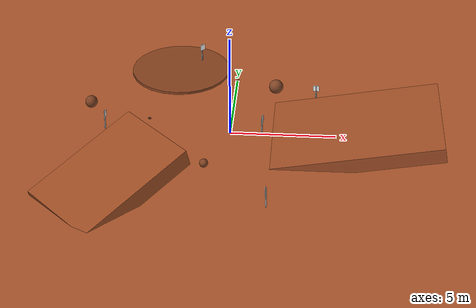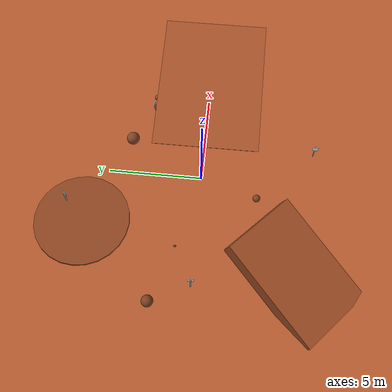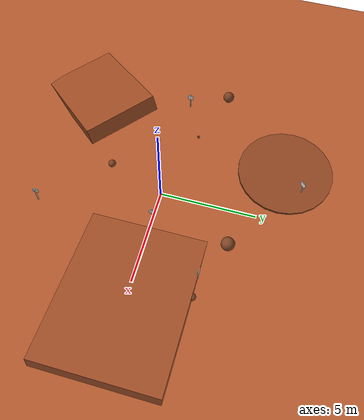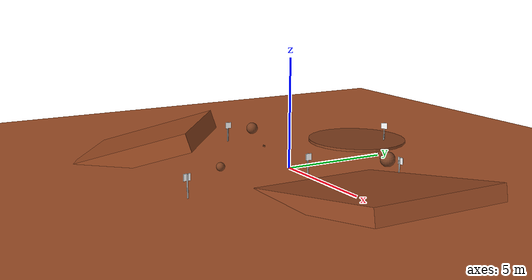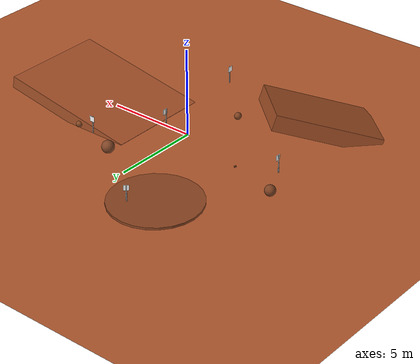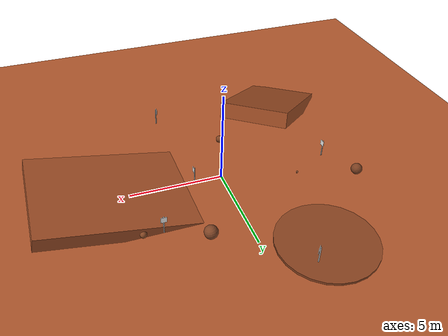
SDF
<?xml version="1.0" ?>
<sdf version="1.6">
  <world name="mars_yard">

    <!-- ===================== LIGHTING ===================== -->
    <!-- Mars-like directional light, low angle sun -->
    <light name="sun" type="directional">
      <cast_shadows>true</cast_shadows>
      <pose>0 0 50 0 0.3 0.5</pose>
      <diffuse>0.9 0.7 0.5 1</diffuse>
      <specular>0.3 0.2 0.1 1</specular>
      <direction>-0.5 0.3 -0.8</direction>
    </light>

    <!-- Ambient fill to avoid pitch-black shadows -->
    <scene>
      <ambient>0.3 0.2 0.15 1</ambient>
      <background>0.55 0.35 0.2 1</background>
      <sky>
        <clouds>
          <speed>0</speed>
        </clouds>
      </sky>
    </scene>

    <!-- ===================== PHYSICS ===================== -->
    <physics type="ode">
      <real_time_update_rate>1000</real_time_update_rate>
      <max_step_size>0.001</max_step_size>
      <real_time_factor>1</real_time_factor>
      <ode>
        <solver>
          <type>quick</type>
          <iters>150</iters>
          <sor>1.4</sor>
        </solver>
        <constraints>
          <cfm>0.00001</cfm>
          <erp>0.2</erp>
          <contact_max_correcting_vel>100</contact_max_correcting_vel>
          <contact_surface_layer>0.001</contact_surface_layer>
        </constraints>
      </ode>
    </physics>

    <!-- ===================== BASE GROUND PLANE (reddish Mars soil) ===================== -->
    <model name="ground_plane">
      <static>true</static>
      <link name="link">
        <collision name="collision">
          <geometry>
            <plane>
              <normal>0 0 1</normal>
              <size>40 40</size>
            </plane>
          </geometry>
          <surface>
            <friction>
              <ode>
                <!-- Sandy, loose soil = lower friction than concrete -->
                <mu>0.6</mu>
                <mu2>0.6</mu2>
              </ode>
            </friction>
            <contact>
              <ode>
                <soft_cfm>0.001</soft_cfm>
                <soft_erp>0.15</soft_erp>
              </ode>
            </contact>
          </surface>
        </collision>
        <visual name="visual">
          <cast_shadows>false</cast_shadows>
          <geometry>
            <plane>
              <normal>0 0 1</normal>
              <size>40 40</size>
            </plane>
          </geometry>
          <material>
            <ambient>0.6 0.3 0.15 1</ambient>
            <diffuse>0.7 0.35 0.18 1</diffuse>
            <specular>0.1 0.05 0.02 1</specular>
          </material>
        </visual>
      </link>
    </model>

    <!-- ===================== SLOPE 1: Gentle ramp (~10 deg) North side ===================== -->
    <model name="slope_north">
      <static>true</static>
      <pose>6 0 0.35 0 -0.175 0</pose>
      <link name="link">
        <collision name="collision">
          <geometry>
            <box><size>8 6 0.7</size></box>
          </geometry>
          <surface>
            <friction><ode><mu>0.55</mu><mu2>0.55</mu2></ode></friction>
          </surface>
        </collision>
        <visual name="visual">
          <geometry>
            <box><size>8 6 0.7</size></box>
          </geometry>
          <material>
            <ambient>0.55 0.28 0.12 1</ambient>
            <diffuse>0.65 0.32 0.16 1</diffuse>
          </material>
        </visual>
      </link>
    </model>

    <!-- ===================== SLOPE 2: Steeper ramp (~18 deg) South-West ===================== -->
    <model name="slope_southwest">
      <static>true</static>
      <pose>-5 -5 0.55 0.08 -0.31 0.8</pose>
      <link name="link">
        <collision name="collision">
          <geometry>
            <box><size>6 4 0.9</size></box>
          </geometry>
          <surface>
            <friction><ode><mu>0.5</mu><mu2>0.5</mu2></ode></friction>
          </surface>
        </collision>
        <visual name="visual">
          <geometry>
            <box><size>6 4 0.9</size></box>
          </geometry>
          <material>
            <ambient>0.52 0.26 0.11 1</ambient>
            <diffuse>0.62 0.30 0.14 1</diffuse>
          </material>
        </visual>
      </link>
    </model>

    <!-- ===================== SHALLOW CRATER ===================== -->
    <!-- Simulated as an inverted truncated cone (cylinder depression) -->
    <!-- In Gazebo classic we fake it with a sunken ring of blocks -->
    <model name="crater_rim_1">
      <static>true</static>
      <pose>-3 6 -0.05 0 0 0</pose>
      <link name="link">
        <collision name="col"><geometry><cylinder><radius>2.5</radius><length>0.3</length></cylinder></geometry></collision>
        <visual name="vis">
          <geometry><cylinder><radius>2.5</radius><length>0.3</length></cylinder></geometry>
          <material><ambient>0.45 0.22 0.10 1</ambient><diffuse>0.55 0.27 0.13 1</diffuse></material>
        </visual>
      </link>
    </model>
    <!-- Inner crater floor (sunken) -->
    <model name="crater_floor">
      <static>true</static>
      <pose>-3 6 -0.22 0 0 0</pose>
      <link name="link">
        <collision name="col"><geometry><cylinder><radius>1.6</radius><length>0.1</length></cylinder></geometry></collision>
        <visual name="vis">
          <geometry><cylinder><radius>1.6</radius><length>0.1</length></cylinder></geometry>
          <material><ambient>0.40 0.20 0.09 1</ambient><diffuse>0.50 0.25 0.12 1</diffuse></material>
        </visual>
      </link>
    </model>

    <!-- ===================== BOULDERS ===================== -->
    <!-- Large boulder 1 -->
    <model name="boulder_large_1">
      <static>true</static>
      <pose>2 4 0.35 0.2 0.1 0.5</pose>
      <link name="link">
        <collision name="col"><geometry><sphere><radius>0.35</radius></sphere></geometry></collision>
        <visual name="vis">
          <geometry><sphere><radius>0.35</radius></sphere></geometry>
          <material><ambient>0.4 0.22 0.12 1</ambient><diffuse>0.5 0.27 0.15 1</diffuse><specular>0.15 0.1 0.05 1</specular></material>
        </visual>
      </link>
    </model>

    <!-- Large boulder 2 -->
    <model name="boulder_large_2">
      <static>true</static>
      <pose>-7 2 0.3 0.1 0.3 1.0</pose>
      <link name="link">
        <collision name="col"><geometry><sphere><radius>0.3</radius></sphere></geometry></collision>
        <visual name="vis">
          <geometry><sphere><radius>0.3</radius></sphere></geometry>
          <material><ambient>0.38 0.20 0.11 1</ambient><diffuse>0.48 0.25 0.13 1</diffuse></material>
        </visual>
      </link>
    </model>

    <!-- Medium boulder cluster near slope -->
    <model name="boulder_med_1">
      <static>true</static>
      <pose>5 3 0.18 0.3 0 0.7</pose>
      <link name="link">
        <collision name="col"><geometry><sphere><radius>0.18</radius></sphere></geometry></collision>
        <visual name="vis">
          <geometry><sphere><radius>0.18</radius></sphere></geometry>
          <material><ambient>0.42 0.23 0.12 1</ambient><diffuse>0.52 0.28 0.14 1</diffuse></material>
        </visual>
      </link>
    </model>

    <model name="boulder_med_2">
      <static>true</static>
      <pose>5.6 2.5 0.15 0 0.2 0.3</pose>
      <link name="link">
        <collision name="col"><geometry><sphere><radius>0.15</radius></sphere></geometry></collision>
        <visual name="vis">
          <geometry><sphere><radius>0.15</radius></sphere></geometry>
          <material><ambient>0.42 0.23 0.12 1</ambient><diffuse>0.52 0.28 0.14 1</diffuse></material>
        </visual>
      </link>
    </model>

    <model name="boulder_med_3">
      <static>true</static>
      <pose>-1 -3 0.2 0.1 0.1 1.2</pose>
      <link name="link">
        <collision name="col"><geometry><sphere><radius>0.2</radius></sphere></geometry></collision>
        <visual name="vis">
          <geometry><sphere><radius>0.2</radius></sphere></geometry>
          <material><ambient>0.40 0.21 0.11 1</ambient><diffuse>0.50 0.26 0.13 1</diffuse></material>
        </visual>
      </link>
    </model>

    <!-- Small rocks scattered -->
    <model name="rock_small_1"><static>true</static><pose>3 -2 0.07 0.2 0.1 0</pose>
      <link name="link"><collision name="col"><geometry><box><size>0.14 0.1 0.08</size></box></geometry></collision>
        <visual name="vis"><geometry><box><size>0.14 0.1 0.08</size></box></geometry><material><ambient>0.44 0.24 0.13 1</ambient></material></visual></link></model>

    <model name="rock_small_2"><static>true</static><pose>-4 1 0.06 0 0.3 1</pose>
      <link name="link"><collision name="col"><geometry><box><size>0.12 0.09 0.06</size></box></geometry></collision>
        <visual name="vis"><geometry><box><size>0.12 0.09 0.06</size></box></geometry><material><ambient>0.44 0.24 0.13 1</ambient></material></visual></link></model>

    <model name="rock_small_3"><static>true</static><pose>0 5 0.06 0.1 0 0.6</pose>
      <link name="link"><collision name="col"><geometry><box><size>0.11 0.08 0.06</size></box></geometry></collision>
        <visual name="vis"><geometry><box><size>0.11 0.08 0.06</size></box></geometry><material><ambient>0.44 0.24 0.13 1</ambient></material></visual></link></model>

    <model name="rock_small_4"><static>true</static><pose>7 -1 0.05 0 0.1 0.9</pose>
      <link name="link"><collision name="col"><geometry><box><size>0.1 0.08 0.05</size></box></geometry></collision>
        <visual name="vis"><geometry><box><size>0.1 0.08 0.05</size></box></geometry><material><ambient>0.44 0.24 0.13 1</ambient></material></visual></link></model>

    <model name="rock_small_5"><static>true</static><pose>-6 -4 0.07 0.15 0 0.4</pose>
      <link name="link"><collision name="col"><geometry><box><size>0.13 0.09 0.07</size></box></geometry></collision>
        <visual name="vis"><geometry><box><size>0.13 0.09 0.07</size></box></geometry><material><ambient>0.44 0.24 0.13 1</ambient></material></visual></link></model>

    <!-- ===================== ARUCO MARKER STANDS ===================== -->

    <!-- Marker Stand 0 - near start (0,0) for reference -->
    <model name="aruco_stand_0">
      <static>true</static>
      <pose>1.5 0 0 0 0 0</pose>
      <link name="pole">
        <collision name="col"><geometry><cylinder><radius>0.03</radius><length>1.0</length></cylinder></geometry></collision>
        <visual name="vis">
          <pose>0 0 0.5 0 0 0</pose>
          <geometry><cylinder><radius>0.03</radius><length>1.0</length></cylinder></geometry>
          <material><ambient>0.6 0.6 0.6 1</ambient><diffuse>0.7 0.7 0.7 1</diffuse></material>
        </visual>
      </link>
      <link name="board">
        <!-- Board face at ~0.8m height, facing +X direction -->
        <pose>0.05 0 0.85 0 0 0</pose>
        <collision name="col"><geometry><box><size>0.02 0.3 0.3</size></box></geometry></collision>
        <visual name="vis">
          <geometry><box><size>0.02 0.3 0.3</size></box></geometry>
          <!-- Replace this with your ArUco marker texture -->
          <material>
            <ambient>1 1 1 1</ambient>
            <diffuse>1 1 1 1</diffuse>
            <!-- To use a real texture: -->
          </material>
        </visual>
      </link>
      <joint name="pole_board" type="fixed">
        <parent>pole</parent><child>board</child>
      </joint>
    </model>

    <!-- Marker Stand 1 - checkpoint A area -->
    <model name="aruco_stand_1">
      <static>true</static>
      <pose>4 3 0 0 0 1.57</pose>
      <link name="pole">
        <collision name="col"><geometry><cylinder><radius>0.03</radius><length>1.0</length></cylinder></geometry></collision>
        <visual name="vis">
          <pose>0 0 0.5 0 0 0</pose>
          <geometry><cylinder><radius>0.03</radius><length>1.0</length></cylinder></geometry>
          <material><ambient>0.6 0.6 0.6 1</ambient><diffuse>0.7 0.7 0.7 1</diffuse></material>
        </visual>
      </link>
      <link name="board">
        <pose>0.05 0 0.85 0 0 0</pose>
        <collision name="col"><geometry><box><size>0.02 0.3 0.3</size></box></geometry></collision>
        <visual name="vis">
          <geometry><box><size>0.02 0.3 0.3</size></box></geometry>
          <material><ambient>1 1 1 1</ambient><diffuse>1 1 1 1</diffuse></material>
        </visual>
      </link>
      <joint name="pole_board" type="fixed"><parent>pole</parent><child>board</child></joint>
    </model>

    <!-- Marker Stand 2 - checkpoint B area -->
    <model name="aruco_stand_2">
      <static>true</static>
      <pose>-2 7 0 0 0 -0.785</pose>
      <link name="pole">
        <collision name="col"><geometry><cylinder><radius>0.03</radius><length>1.0</length></cylinder></geometry></collision>
        <visual name="vis">
          <pose>0 0 0.5 0 0 0</pose>
          <geometry><cylinder><radius>0.03</radius><length>1.0</length></cylinder></geometry>
          <material><ambient>0.6 0.6 0.6 1</ambient><diffuse>0.7 0.7 0.7 1</diffuse></material>
        </visual>
      </link>
      <link name="board">
        <pose>0.05 0 0.85 0 0 0</pose>
        <collision name="col"><geometry><box><size>0.02 0.3 0.3</size></box></geometry></collision>
        <visual name="vis">
          <geometry><box><size>0.02 0.3 0.3</size></box></geometry>
          <material><ambient>1 1 1 1</ambient><diffuse>1 1 1 1</diffuse></material>
        </visual>
      </link>
      <joint name="pole_board" type="fixed"><parent>pole</parent><child>board</child></joint>
    </model>

    <!-- Marker Stand 3 - checkpoint C area -->
    <model name="aruco_stand_3">
      <static>true</static>
      <pose>-6 0 0 0 0 0</pose>
      <link name="pole">
        <collision name="col"><geometry><cylinder><radius>0.03</radius><length>1.0</length></cylinder></geometry></collision>
        <visual name="vis">
          <pose>0 0 0.5 0 0 0</pose>
          <geometry><cylinder><radius>0.03</radius><length>1.0</length></cylinder></geometry>
          <material><ambient>0.6 0.6 0.6 1</ambient><diffuse>0.7 0.7 0.7 1</diffuse></material>
        </visual>
      </link>
      <link name="board">
        <pose>0.05 0 0.85 0 0 0</pose>
        <collision name="col"><geometry><box><size>0.02 0.3 0.3</size></box></geometry></collision>
        <visual name="vis">
          <geometry><box><size>0.02 0.3 0.3</size></box></geometry>
          <material><ambient>1 1 1 1</ambient><diffuse>1 1 1 1</diffuse></material>
        </visual>
      </link>
      <joint name="pole_board" type="fixed"><parent>pole</parent><child>board</child></joint>
    </model>

    <!-- Marker Stand 4 - checkpoint D / maintenance panel area -->
    <model name="aruco_stand_4">
      <static>true</static>
      <pose>2 -6 0 0 0 3.14</pose>
      <link name="pole">
        <collision name="col"><geometry><cylinder><radius>0.03</radius><length>1.0</length></cylinder></geometry></collision>
        <visual name="vis">
          <pose>0 0 0.5 0 0 0</pose>
          <geometry><cylinder><radius>0.03</radius><length>1.0</length></cylinder></geometry>
          <material><ambient>0.6 0.6 0.6 1</ambient><diffuse>0.7 0.7 0.7 1</diffuse></material>
        </visual>
      </link>
      <link name="board">
        <pose>0.05 0 0.85 0 0 0</pose>
        <collision name="col"><geometry><box><size>0.02 0.3 0.3</size></box></geometry></collision>
        <visual name="vis">
          <geometry><box><size>0.02 0.3 0.3</size></box></geometry>
          <material><ambient>1 1 1 1</ambient><diffuse>1 1 1 1</diffuse></material>
        </visual>
      </link>
      <joint name="pole_board" type="fixed"><parent>pole</parent><child>board</child></joint>
    </model>

    <!-- ===================== BOUNDARY WALLS (invisible collision, keeps rover in) ===================== -->
    <model name="wall_north"><static>true</static><pose>0 11 0.5 0 0 0</pose>
      <link name="link"><collision name="col"><geometry><box><size>22 0.2 1.0</size></box></geometry></collision></link></model>
    <model name="wall_south"><static>true</static><pose>0 -11 0.5 0 0 0</pose>
      <link name="link"><collision name="col"><geometry><box><size>22 0.2 1.0</size></box></geometry></collision></link></model>
    <model name="wall_east"><static>true</static><pose>11 0 0.5 0 0 0</pose>
      <link name="link"><collision name="col"><geometry><box><size>0.2 22 1.0</size></box></geometry></collision></link></model>
    <model name="wall_west"><static>true</static><pose>-11 0 0.5 0 0 0</pose>
      <link name="link"><collision name="col"><geometry><box><size>0.2 22 1.0</size></box></geometry></collision></link></model>

  </world>
</sdf>
